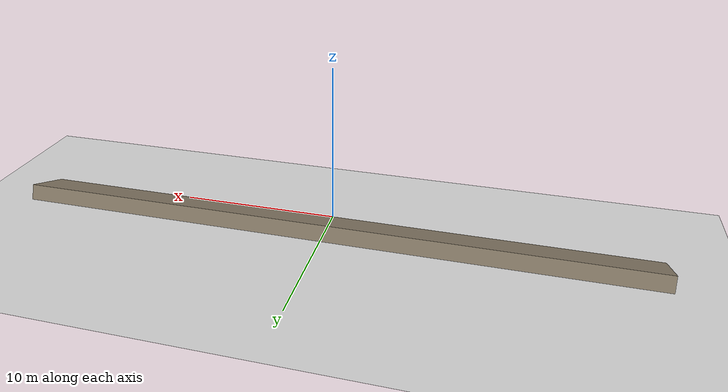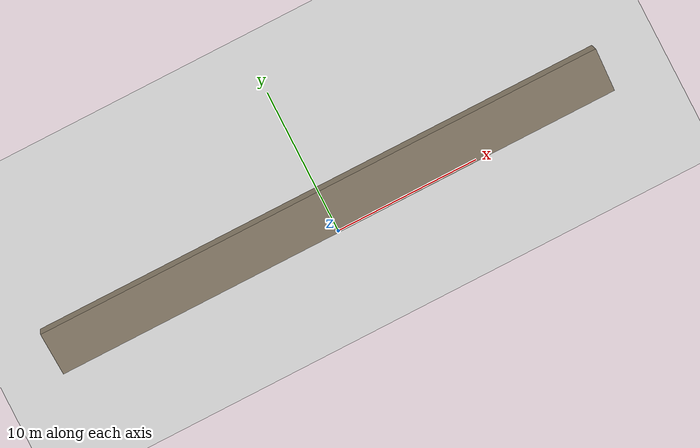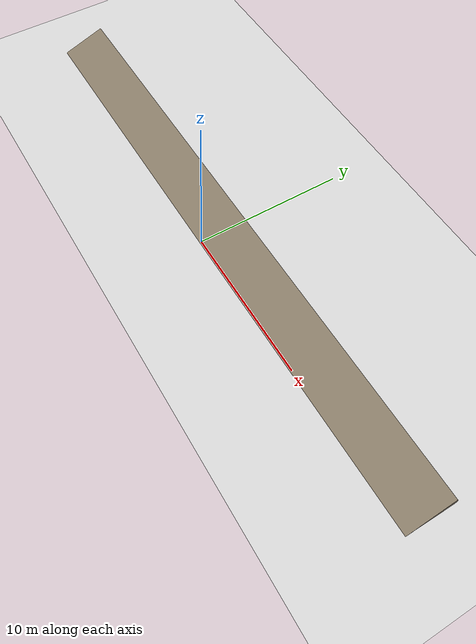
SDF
<?xml version="1.0" ?>
<sdf version="1.6">
  <world name="rampa_cruzada">
    <include><uri>model://sun</uri></include>
    <include><uri>model://ground_plane</uri></include>

    <model name="rampa_20">
      <static>true</static>
      <pose>0 0.171010 -0.469846 0.3490659 0 0</pose>
      <link name="link">
        <collision name="col">
          <geometry><box><size>40 6 1</size></box></geometry>
          <surface>
            <friction>
              <ode><mu>1.0</mu><mu2>1.0</mu2></ode>
            </friction>
            <contact>
              <ode>
                <kp>1000000.0</kp>
                <kd>1.0</kd>
                <min_depth>0.003</min_depth>
                <max_vel>1.0</max_vel>
              </ode>
            </contact>
          </surface>
        </collision>
        <visual name="vis">
          <geometry><box><size>40 6 1</size></box></geometry>
          <material>
            <ambient>0.4 0.35 0.3 1</ambient>
            <diffuse>0.55 0.5 0.42 1</diffuse>
          </material>
        </visual>
      </link>
    </model>

    <physics type="ode">
      <max_step_size>0.0005</max_step_size>
      <real_time_update_rate>1000</real_time_update_rate>
      <ode>
        <solver>
          <type>quick</type>
          <iters>100</iters>
          <sor>1.3</sor>
        </solver>
      </ode>
    </physics>
  </world>
</sdf>
